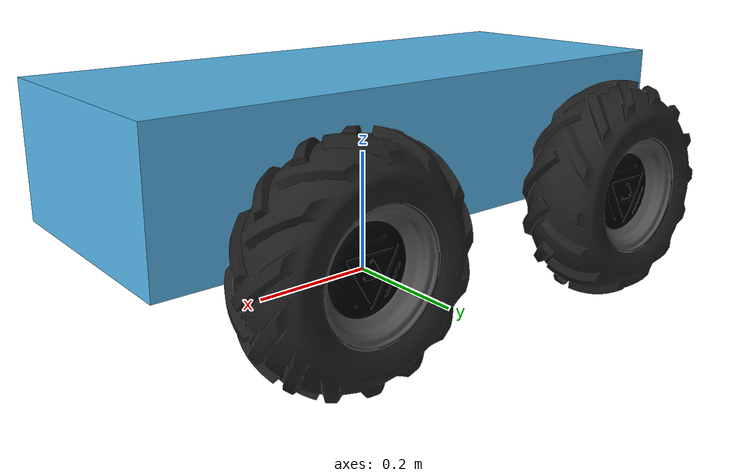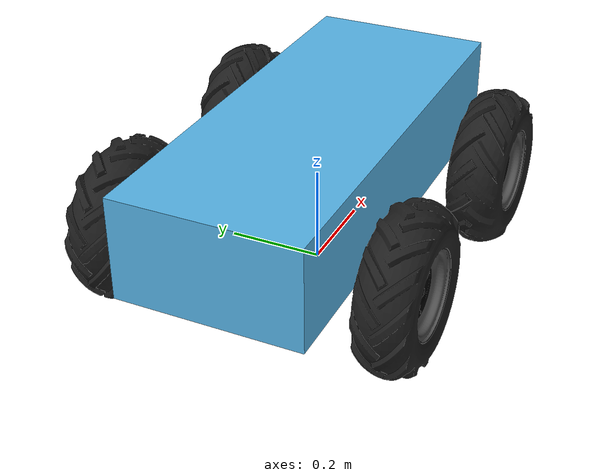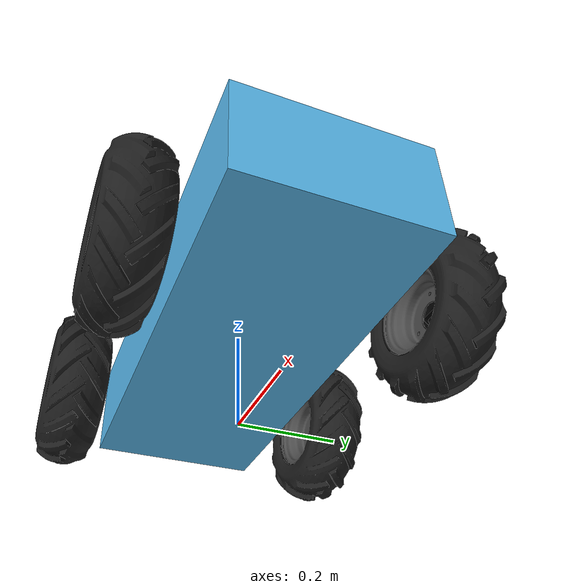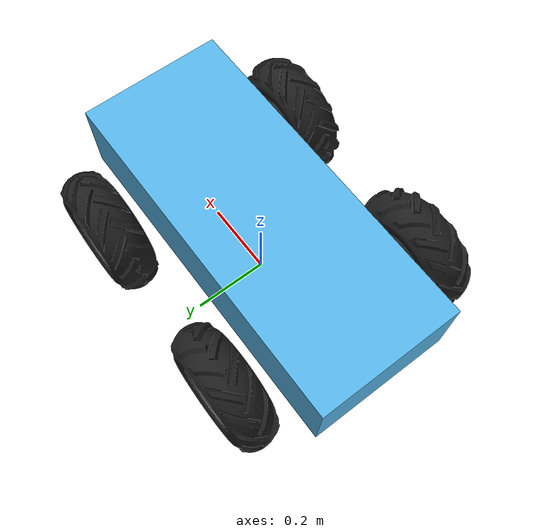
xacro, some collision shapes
<?xml version="1.0"?>
<robot name="scout_v2" xmlns:xacro="http://ros.org/wiki/xacro">

  <!-- Variables -->
  <xacro:property name="M_PI" value="3.1415926"/>

  <!-- Vehicle Geometries -->
  <xacro:property name="base_x_size" value="0.9250000"/>
  <xacro:property name="base_y_size" value="0.380000"/>
  <xacro:property name="base_z_size" value="0.210000"/>

  <xacro:property name="wheelbase" value="0.498"/>
  <xacro:property name="track" value="0.58306"/>
  <xacro:property name="wheel_vertical_offset" value="-0.0702"/>

  <xacro:property name="wheel_length" value="1.1653e-01"/>
  <xacro:property name="wheel_radius" value="1.6459e-01"/>

  <!-- base footprint -->
  <link name="base_footprint"/>
  <joint name="base_footprint_joint" type="fixed">
    <origin xyz="0 0 0.23" rpy="0 0 0"/>
    <parent link="base_footprint"/>
    <child link="base_link"/>
  </joint>

  <!-- base link -->
  <link name="base_link">
    <visual>
      <origin xyz="0 0 0" rpy="0 0 0"/>
      <geometry>
        <mesh filename="package://scout_description/meshes/base_link.dae"/>
      </geometry>
    </visual>
    <collision>
      <origin xyz="0 0 0.008" rpy="0 0 0"/>
      <geometry>
        <box size="${base_x_size} ${base_y_size} ${base_z_size}"/>
      </geometry>
    </collision>
    <collision>
      <origin xyz="0 0 ${base_z_size/6}" rpy="0 0 0"/>
      <geometry>
        <box size="${base_x_size/6} ${base_y_size*1.65} ${base_z_size/3}"/>
      </geometry>
    </collision>
  </link>

  <!-- mid mount -->
  <link name="mid_mount"/>
  <joint name="mid_mount_joint" type="fixed">
    <origin xyz="0 0 0.113" rpy="0 0 0"/>
    <parent link="base_link"/>
    <child link="mid_mount"/>
  </joint>

  <!-- front left -->
  <link name="front_left_wheel_link">
    <inertial>
      <mass value="3"/>
      <origin xyz="0 0 0"/>
      <inertia ixx="0.7171" ixy="0" ixz="0" iyy="0.1361" iyz="0" izz="0.7171"/>
    </inertial>
    <visual>
      <origin xyz="0 0 0" rpy="0 0 0"/>
      <geometry>
        <mesh filename="package://scout_description/meshes/wheel_type2.dae"/>
      </geometry>
    </visual>
    <collision>
      <origin xyz="0 0 0" rpy="${M_PI/2} 0 0"/>
      <geometry>
        <cylinder length="${wheel_length}" radius="${wheel_radius}"/>
      </geometry>
    </collision>
  </link>
  <joint name="front_left_wheel" type="continuous">
    <parent link="base_link"/>
    <child link="front_left_wheel_link"/>
    <origin xyz="${wheelbase/2} ${track/2} ${wheel_vertical_offset}" rpy="0 0 0"/>
    <axis xyz="0 1 0" rpy="0 0 0"/>
  </joint>

  <!-- rear left -->
  <link name="rear_left_wheel_link">
    <inertial>
      <mass value="3"/>
      <origin xyz="0 0 0"/>
      <inertia ixx="0.7171" ixy="0" ixz="0" iyy="0.1361" iyz="0" izz="0.7171"/>
    </inertial>
    <visual>
      <origin xyz="0 0 0" rpy="0 0 0"/>
      <geometry>
        <mesh filename="package://scout_description/meshes/wheel_type1.dae"/>
      </geometry>
    </visual>
    <collision>
      <origin xyz="0 0 0" rpy="${M_PI/2} 0 0"/>
      <geometry>
        <cylinder length="${wheel_length}" radius="${wheel_radius}"/>
      </geometry>
    </collision>
  </link>
  <joint name="rear_left_wheel" type="continuous">
    <parent link="base_link"/>
    <child link="rear_left_wheel_link"/>
    <origin xyz="${-wheelbase/2} ${track/2} ${wheel_vertical_offset}" rpy="0 0 0"/>
    <axis xyz="0 1 0" rpy="0 0 0"/>
  </joint>

  <!-- front right -->
  <link name="front_right_wheel_link">
    <inertial>
      <mass value="3"/>
      <origin xyz="0 0 0"/>
      <inertia ixx="0.7171" ixy="0" ixz="0" iyy="0.1361" iyz="0" izz="0.7171"/>
    </inertial>
    <visual>
      <origin xyz="0 0 0" rpy="0 0 ${M_PI}"/>
      <geometry>
        <mesh filename="package://scout_description/meshes/wheel_type1.dae"/>
      </geometry>
    </visual>
    <collision>
      <origin xyz="0 0 0" rpy="${M_PI/2} 0 0"/>
      <geometry>
        <cylinder length="${wheel_length}" radius="${wheel_radius}"/>
      </geometry>
    </collision>
  </link>
  <joint name="front_right_wheel" type="continuous">
    <parent link="base_link"/>
    <child link="front_right_wheel_link"/>
    <origin xyz="${wheelbase/2} ${-track/2} ${wheel_vertical_offset}" rpy="0 0 0"/>
    <axis xyz="0 1 0" rpy="0 0 0"/>
  </joint>

  <!-- rear right -->
  <link name="rear_right_wheel_link">
    <inertial>
      <mass value="3"/>
      <origin xyz="0 0 0"/>
      <inertia ixx="0.7171" ixy="0" ixz="0" iyy="0.1361" iyz="0" izz="0.7171"/>
    </inertial>
    <visual>
      <origin xyz="0 0 0" rpy="0 0 ${M_PI}"/>
      <geometry>
        <mesh filename="package://scout_description/meshes/wheel_type2.dae"/>
      </geometry>
    </visual>
    <collision>
      <origin xyz="0 0 0" rpy="${M_PI/2} 0 0"/>
      <geometry>
        <cylinder length="${wheel_length}" radius="${wheel_radius}"/>
      </geometry>
    </collision>
  </link>
  <joint name="rear_right_wheel" type="continuous">
    <parent link="base_link"/>
    <child link="rear_right_wheel_link"/>
    <origin xyz="${-wheelbase/2} ${-track/2} ${wheel_vertical_offset}" rpy="0 0 0"/>
    <axis xyz="0 1 0" rpy="0 0 0"/>
  </joint>

</robot>
